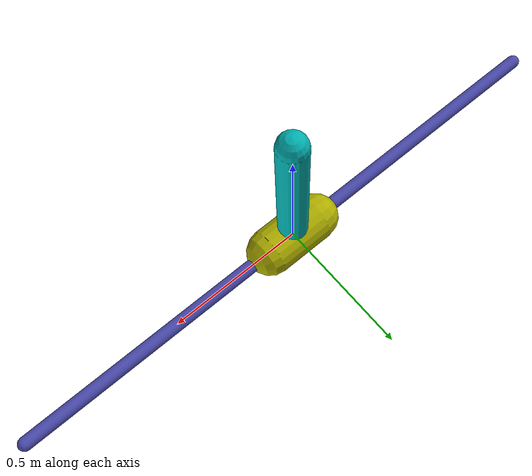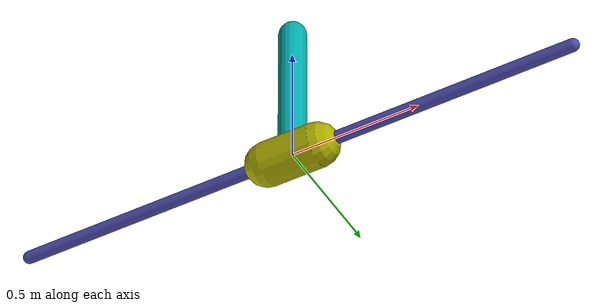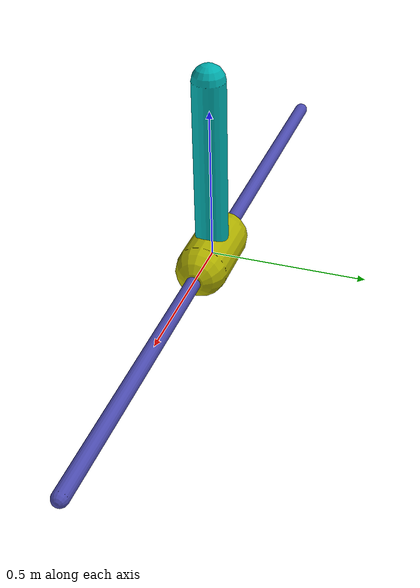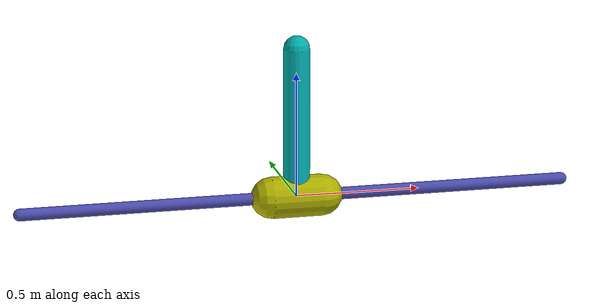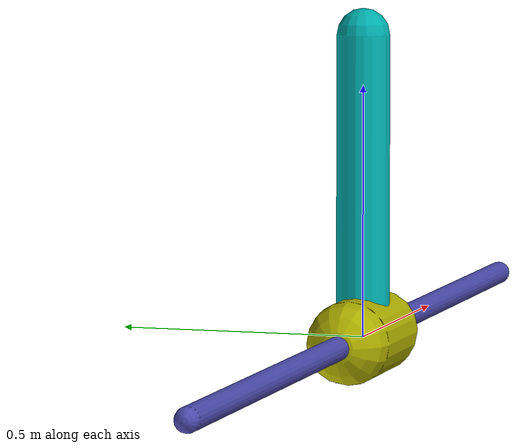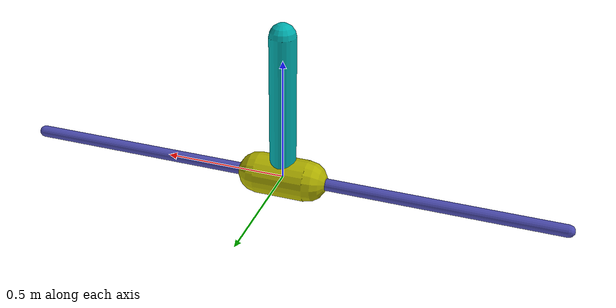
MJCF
<?xml version="1.0" encoding="utf-8"?>
<mujoco model="inverted pendulum">
	<compiler inertiafromgeom="true"></compiler>
	<default>
		<joint armature="0" damping="1.1218762057236145" limited="true"></joint>
		<geom contype="0" friction="0.7548894408613614 0.11231259314810196 0.0818101055273257" rgba="0.7 0.7 0 1"></geom>
		<tendon></tendon>
		<motor ctrlrange="-3 3"></motor>
	</default>
	<option gravity="0 0 -9.81" integrator="RK4" timestep="0.02"></option>
	<size nstack="3000"></size>
	<worldbody>
		<geom name="rail" pos="0 0 0" quat="0.707 0 0.707 0" rgba="0.3 0.3 0.7 1" size="0.023975223342004522 1.099246086120317" type="capsule"></geom>
		<body name="cart" pos="0 0 0">
			<joint axis="1 0 0" limited="true" name="slider" pos="0 0 0" range="-1 1" type="slide"></joint>
			<geom name="cart" pos="0 0 0" quat="0.707 0 0.707 0" size="0.08289227656574234 0.10173448489265446" type="capsule"></geom>
			<body name="pole" pos="0 0 0">
				<joint axis="0 1 0" name="hinge" pos="0 0 0" limited="false" range="-90 90" type="hinge"></joint>
				<geom fromto="0 0 0 0.001 0 0.6" name="cpole" rgba="0 0.7 0.7 1" size="0.05276301588942976 0.21461574917450812" type="capsule"></geom>
			</body>
		</body>
	</worldbody>
	<actuator>
		<motor gear="100" joint="slider" name="slide"></motor>
	</actuator>
</mujoco>
